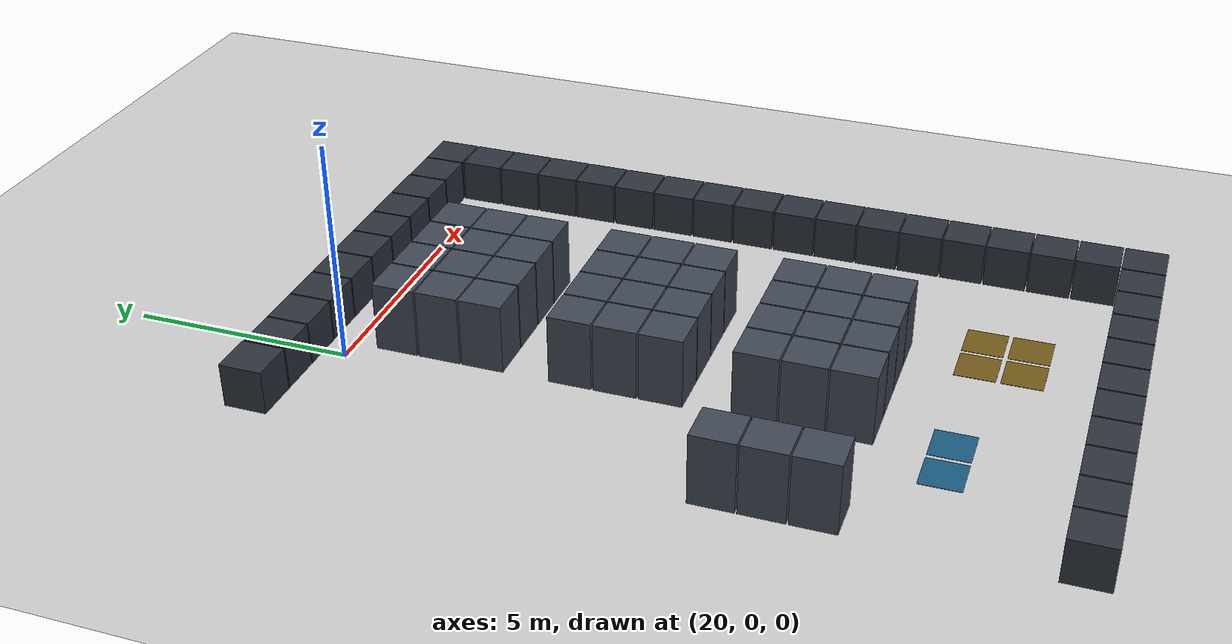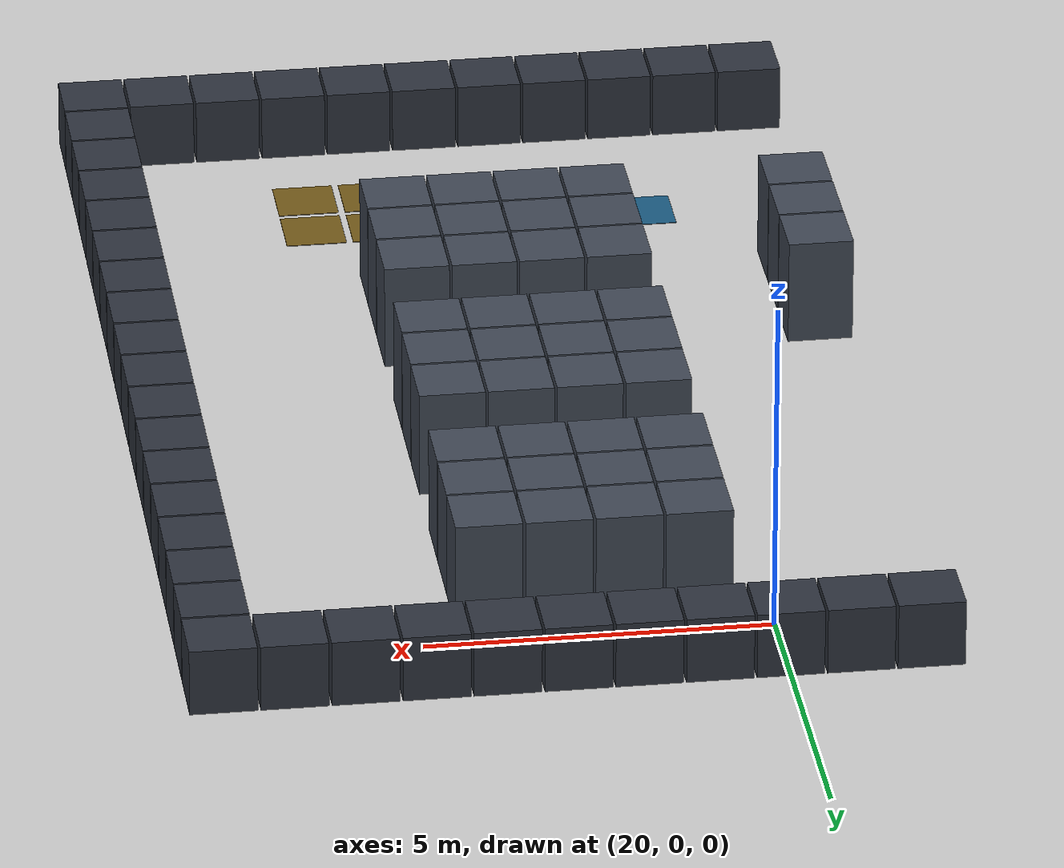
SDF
<sdf version="1.6">
 <world name="fleetx_warehouse">
  <include><uri>model://sun</uri></include>
  <include><uri>model://ground_plane</uri></include>
  <model name="shelf_21_1">
   <static>true</static>
   <pose>21.000 -1.000 0.800 0 0 0</pose>
   <link name="link">
    <collision name="collision"><geometry><box><size>0.960 0.960 1.600</size></box></geometry></collision>
    <visual name="visual">
     <geometry><box><size>0.960 0.960 1.600</size></box></geometry>
     <material><ambient>0.25 0.28 0.33 1</ambient><diffuse>0.25 0.28 0.33 1</diffuse></material>
    </visual>
   </link>
  </model>
  <model name="shelf_22_1">
   <static>true</static>
   <pose>22.000 -1.000 0.800 0 0 0</pose>
   <link name="link">
    <collision name="collision"><geometry><box><size>0.960 0.960 1.600</size></box></geometry></collision>
    <visual name="visual">
     <geometry><box><size>0.960 0.960 1.600</size></box></geometry>
     <material><ambient>0.25 0.28 0.33 1</ambient><diffuse>0.25 0.28 0.33 1</diffuse></material>
    </visual>
   </link>
  </model>
  <model name="shelf_23_1">
   <static>true</static>
   <pose>23.000 -1.000 0.800 0 0 0</pose>
   <link name="link">
    <collision name="collision"><geometry><box><size>0.960 0.960 1.600</size></box></geometry></collision>
    <visual name="visual">
     <geometry><box><size>0.960 0.960 1.600</size></box></geometry>
     <material><ambient>0.25 0.28 0.33 1</ambient><diffuse>0.25 0.28 0.33 1</diffuse></material>
    </visual>
   </link>
  </model>
  <model name="shelf_24_1">
   <static>true</static>
   <pose>24.000 -1.000 0.800 0 0 0</pose>
   <link name="link">
    <collision name="collision"><geometry><box><size>0.960 0.960 1.600</size></box></geometry></collision>
    <visual name="visual">
     <geometry><box><size>0.960 0.960 1.600</size></box></geometry>
     <material><ambient>0.25 0.28 0.33 1</ambient><diffuse>0.25 0.28 0.33 1</diffuse></material>
    </visual>
   </link>
  </model>
  <model name="shelf_21_2">
   <static>true</static>
   <pose>21.000 -2.000 0.800 0 0 0</pose>
   <link name="link">
    <collision name="collision"><geometry><box><size>0.960 0.960 1.600</size></box></geometry></collision>
    <visual name="visual">
     <geometry><box><size>0.960 0.960 1.600</size></box></geometry>
     <material><ambient>0.25 0.28 0.33 1</ambient><diffuse>0.25 0.28 0.33 1</diffuse></material>
    </visual>
   </link>
  </model>
  <model name="shelf_22_2">
   <static>true</static>
   <pose>22.000 -2.000 0.800 0 0 0</pose>
   <link name="link">
    <collision name="collision"><geometry><box><size>0.960 0.960 1.600</size></box></geometry></collision>
    <visual name="visual">
     <geometry><box><size>0.960 0.960 1.600</size></box></geometry>
     <material><ambient>0.25 0.28 0.33 1</ambient><diffuse>0.25 0.28 0.33 1</diffuse></material>
    </visual>
   </link>
  </model>
  <model name="shelf_23_2">
   <static>true</static>
   <pose>23.000 -2.000 0.800 0 0 0</pose>
   <link name="link">
    <collision name="collision"><geometry><box><size>0.960 0.960 1.600</size></box></geometry></collision>
    <visual name="visual">
     <geometry><box><size>0.960 0.960 1.600</size></box></geometry>
     <material><ambient>0.25 0.28 0.33 1</ambient><diffuse>0.25 0.28 0.33 1</diffuse></material>
    </visual>
   </link>
  </model>
  <model name="shelf_24_2">
   <static>true</static>
   <pose>24.000 -2.000 0.800 0 0 0</pose>
   <link name="link">
    <collision name="collision"><geometry><box><size>0.960 0.960 1.600</size></box></geometry></collision>
    <visual name="visual">
     <geometry><box><size>0.960 0.960 1.600</size></box></geometry>
     <material><ambient>0.25 0.28 0.33 1</ambient><diffuse>0.25 0.28 0.33 1</diffuse></material>
    </visual>
   </link>
  </model>
  <model name="shelf_21_3">
   <static>true</static>
   <pose>21.000 -3.000 0.800 0 0 0</pose>
   <link name="link">
    <collision name="collision"><geometry><box><size>0.960 0.960 1.600</size></box></geometry></collision>
    <visual name="visual">
     <geometry><box><size>0.960 0.960 1.600</size></box></geometry>
     <material><ambient>0.25 0.28 0.33 1</ambient><diffuse>0.25 0.28 0.33 1</diffuse></material>
    </visual>
   </link>
  </model>
  <model name="shelf_22_3">
   <static>true</static>
   <pose>22.000 -3.000 0.800 0 0 0</pose>
   <link name="link">
    <collision name="collision"><geometry><box><size>0.960 0.960 1.600</size></box></geometry></collision>
    <visual name="visual">
     <geometry><box><size>0.960 0.960 1.600</size></box></geometry>
     <material><ambient>0.25 0.28 0.33 1</ambient><diffuse>0.25 0.28 0.33 1</diffuse></material>
    </visual>
   </link>
  </model>
  <model name="shelf_23_3">
   <static>true</static>
   <pose>23.000 -3.000 0.800 0 0 0</pose>
   <link name="link">
    <collision name="collision"><geometry><box><size>0.960 0.960 1.600</size></box></geometry></collision>
    <visual name="visual">
     <geometry><box><size>0.960 0.960 1.600</size></box></geometry>
     <material><ambient>0.25 0.28 0.33 1</ambient><diffuse>0.25 0.28 0.33 1</diffuse></material>
    </visual>
   </link>
  </model>
  <model name="shelf_24_3">
   <static>true</static>
   <pose>24.000 -3.000 0.800 0 0 0</pose>
   <link name="link">
    <collision name="collision"><geometry><box><size>0.960 0.960 1.600</size></box></geometry></collision>
    <visual name="visual">
     <geometry><box><size>0.960 0.960 1.600</size></box></geometry>
     <material><ambient>0.25 0.28 0.33 1</ambient><diffuse>0.25 0.28 0.33 1</diffuse></material>
    </visual>
   </link>
  </model>
  <model name="shelf_21_5">
   <static>true</static>
   <pose>21.000 -5.000 0.800 0 0 0</pose>
   <link name="link">
    <collision name="collision"><geometry><box><size>0.960 0.960 1.600</size></box></geometry></collision>
    <visual name="visual">
     <geometry><box><size>0.960 0.960 1.600</size></box></geometry>
     <material><ambient>0.25 0.28 0.33 1</ambient><diffuse>0.25 0.28 0.33 1</diffuse></material>
    </visual>
   </link>
  </model>
  <model name="shelf_22_5">
   <static>true</static>
   <pose>22.000 -5.000 0.800 0 0 0</pose>
   <link name="link">
    <collision name="collision"><geometry><box><size>0.960 0.960 1.600</size></box></geometry></collision>
    <visual name="visual">
     <geometry><box><size>0.960 0.960 1.600</size></box></geometry>
     <material><ambient>0.25 0.28 0.33 1</ambient><diffuse>0.25 0.28 0.33 1</diffuse></material>
    </visual>
   </link>
  </model>
  <model name="shelf_23_5">
   <static>true</static>
   <pose>23.000 -5.000 0.800 0 0 0</pose>
   <link name="link">
    <collision name="collision"><geometry><box><size>0.960 0.960 1.600</size></box></geometry></collision>
    <visual name="visual">
     <geometry><box><size>0.960 0.960 1.600</size></box></geometry>
     <material><ambient>0.25 0.28 0.33 1</ambient><diffuse>0.25 0.28 0.33 1</diffuse></material>
    </visual>
   </link>
  </model>
  <model name="shelf_24_5">
   <static>true</static>
   <pose>24.000 -5.000 0.800 0 0 0</pose>
   <link name="link">
    <collision name="collision"><geometry><box><size>0.960 0.960 1.600</size></box></geometry></collision>
    <visual name="visual">
     <geometry><box><size>0.960 0.960 1.600</size></box></geometry>
     <material><ambient>0.25 0.28 0.33 1</ambient><diffuse>0.25 0.28 0.33 1</diffuse></material>
    </visual>
   </link>
  </model>
  <model name="shelf_21_6">
   <static>true</static>
   <pose>21.000 -6.000 0.800 0 0 0</pose>
   <link name="link">
    <collision name="collision"><geometry><box><size>0.960 0.960 1.600</size></box></geometry></collision>
    <visual name="visual">
     <geometry><box><size>0.960 0.960 1.600</size></box></geometry>
     <material><ambient>0.25 0.28 0.33 1</ambient><diffuse>0.25 0.28 0.33 1</diffuse></material>
    </visual>
   </link>
  </model>
  <model name="shelf_22_6">
   <static>true</static>
   <pose>22.000 -6.000 0.800 0 0 0</pose>
   <link name="link">
    <collision name="collision"><geometry><box><size>0.960 0.960 1.600</size></box></geometry></collision>
    <visual name="visual">
     <geometry><box><size>0.960 0.960 1.600</size></box></geometry>
     <material><ambient>0.25 0.28 0.33 1</ambient><diffuse>0.25 0.28 0.33 1</diffuse></material>
    </visual>
   </link>
  </model>
  <model name="shelf_23_6">
   <static>true</static>
   <pose>23.000 -6.000 0.800 0 0 0</pose>
   <link name="link">
    <collision name="collision"><geometry><box><size>0.960 0.960 1.600</size></box></geometry></collision>
    <visual name="visual">
     <geometry><box><size>0.960 0.960 1.600</size></box></geometry>
     <material><ambient>0.25 0.28 0.33 1</ambient><diffuse>0.25 0.28 0.33 1</diffuse></material>
    </visual>
   </link>
  </model>
  <model name="shelf_24_6">
   <static>true</static>
   <pose>24.000 -6.000 0.800 0 0 0</pose>
   <link name="link">
    <collision name="collision"><geometry><box><size>0.960 0.960 1.600</size></box></geometry></collision>
    <visual name="visual">
     <geometry><box><size>0.960 0.960 1.600</size></box></geometry>
     <material><ambient>0.25 0.28 0.33 1</ambient><diffuse>0.25 0.28 0.33 1</diffuse></material>
    </visual>
   </link>
  </model>
  <model name="shelf_21_7">
   <static>true</static>
   <pose>21.000 -7.000 0.800 0 0 0</pose>
   <link name="link">
    <collision name="collision"><geometry><box><size>0.960 0.960 1.600</size></box></geometry></collision>
    <visual name="visual">
     <geometry><box><size>0.960 0.960 1.600</size></box></geometry>
     <material><ambient>0.25 0.28 0.33 1</ambient><diffuse>0.25 0.28 0.33 1</diffuse></material>
    </visual>
   </link>
  </model>
  <model name="shelf_22_7">
   <static>true</static>
   <pose>22.000 -7.000 0.800 0 0 0</pose>
   <link name="link">
    <collision name="collision"><geometry><box><size>0.960 0.960 1.600</size></box></geometry></collision>
    <visual name="visual">
     <geometry><box><size>0.960 0.960 1.600</size></box></geometry>
     <material><ambient>0.25 0.28 0.33 1</ambient><diffuse>0.25 0.28 0.33 1</diffuse></material>
    </visual>
   </link>
  </model>
  <model name="shelf_23_7">
   <static>true</static>
   <pose>23.000 -7.000 0.800 0 0 0</pose>
   <link name="link">
    <collision name="collision"><geometry><box><size>0.960 0.960 1.600</size></box></geometry></collision>
    <visual name="visual">
     <geometry><box><size>0.960 0.960 1.600</size></box></geometry>
     <material><ambient>0.25 0.28 0.33 1</ambient><diffuse>0.25 0.28 0.33 1</diffuse></material>
    </visual>
   </link>
  </model>
  <model name="shelf_24_7">
   <static>true</static>
   <pose>24.000 -7.000 0.800 0 0 0</pose>
   <link name="link">
    <collision name="collision"><geometry><box><size>0.960 0.960 1.600</size></box></geometry></collision>
    <visual name="visual">
     <geometry><box><size>0.960 0.960 1.600</size></box></geometry>
     <material><ambient>0.25 0.28 0.33 1</ambient><diffuse>0.25 0.28 0.33 1</diffuse></material>
    </visual>
   </link>
  </model>
  <model name="shelf_18_9">
   <static>true</static>
   <pose>18.000 -9.000 0.800 0 0 0</pose>
   <link name="link">
    <collision name="collision"><geometry><box><size>0.960 0.960 1.600</size></box></geometry></collision>
    <visual name="visual">
     <geometry><box><size>0.960 0.960 1.600</size></box></geometry>
     <material><ambient>0.25 0.28 0.33 1</ambient><diffuse>0.25 0.28 0.33 1</diffuse></material>
    </visual>
   </link>
  </model>
  <model name="shelf_21_9">
   <static>true</static>
   <pose>21.000 -9.000 0.800 0 0 0</pose>
   <link name="link">
    <collision name="collision"><geometry><box><size>0.960 0.960 1.600</size></box></geometry></collision>
    <visual name="visual">
     <geometry><box><size>0.960 0.960 1.600</size></box></geometry>
     <material><ambient>0.25 0.28 0.33 1</ambient><diffuse>0.25 0.28 0.33 1</diffuse></material>
    </visual>
   </link>
  </model>
  <model name="shelf_22_9">
   <static>true</static>
   <pose>22.000 -9.000 0.800 0 0 0</pose>
   <link name="link">
    <collision name="collision"><geometry><box><size>0.960 0.960 1.600</size></box></geometry></collision>
    <visual name="visual">
     <geometry><box><size>0.960 0.960 1.600</size></box></geometry>
     <material><ambient>0.25 0.28 0.33 1</ambient><diffuse>0.25 0.28 0.33 1</diffuse></material>
    </visual>
   </link>
  </model>
  <model name="shelf_23_9">
   <static>true</static>
   <pose>23.000 -9.000 0.800 0 0 0</pose>
   <link name="link">
    <collision name="collision"><geometry><box><size>0.960 0.960 1.600</size></box></geometry></collision>
    <visual name="visual">
     <geometry><box><size>0.960 0.960 1.600</size></box></geometry>
     <material><ambient>0.25 0.28 0.33 1</ambient><diffuse>0.25 0.28 0.33 1</diffuse></material>
    </visual>
   </link>
  </model>
  <model name="shelf_24_9">
   <static>true</static>
   <pose>24.000 -9.000 0.800 0 0 0</pose>
   <link name="link">
    <collision name="collision"><geometry><box><size>0.960 0.960 1.600</size></box></geometry></collision>
    <visual name="visual">
     <geometry><box><size>0.960 0.960 1.600</size></box></geometry>
     <material><ambient>0.25 0.28 0.33 1</ambient><diffuse>0.25 0.28 0.33 1</diffuse></material>
    </visual>
   </link>
  </model>
  <model name="shelf_18_10">
   <static>true</static>
   <pose>18.000 -10.000 0.800 0 0 0</pose>
   <link name="link">
    <collision name="collision"><geometry><box><size>0.960 0.960 1.600</size></box></geometry></collision>
    <visual name="visual">
     <geometry><box><size>0.960 0.960 1.600</size></box></geometry>
     <material><ambient>0.25 0.28 0.33 1</ambient><diffuse>0.25 0.28 0.33 1</diffuse></material>
    </visual>
   </link>
  </model>
  <model name="shelf_21_10">
   <static>true</static>
   <pose>21.000 -10.000 0.800 0 0 0</pose>
   <link name="link">
    <collision name="collision"><geometry><box><size>0.960 0.960 1.600</size></box></geometry></collision>
    <visual name="visual">
     <geometry><box><size>0.960 0.960 1.600</size></box></geometry>
     <material><ambient>0.25 0.28 0.33 1</ambient><diffuse>0.25 0.28 0.33 1</diffuse></material>
    </visual>
   </link>
  </model>
  <model name="shelf_22_10">
   <static>true</static>
   <pose>22.000 -10.000 0.800 0 0 0</pose>
   <link name="link">
    <collision name="collision"><geometry><box><size>0.960 0.960 1.600</size></box></geometry></collision>
    <visual name="visual">
     <geometry><box><size>0.960 0.960 1.600</size></box></geometry>
     <material><ambient>0.25 0.28 0.33 1</ambient><diffuse>0.25 0.28 0.33 1</diffuse></material>
    </visual>
   </link>
  </model>
  <model name="shelf_23_10">
   <static>true</static>
   <pose>23.000 -10.000 0.800 0 0 0</pose>
   <link name="link">
    <collision name="collision"><geometry><box><size>0.960 0.960 1.600</size></box></geometry></collision>
    <visual name="visual">
     <geometry><box><size>0.960 0.960 1.600</size></box></geometry>
     <material><ambient>0.25 0.28 0.33 1</ambient><diffuse>0.25 0.28 0.33 1</diffuse></material>
    </visual>
   </link>
  </model>
  <model name="shelf_24_10">
   <static>true</static>
   <pose>24.000 -10.000 0.800 0 0 0</pose>
   <link name="link">
    <collision name="collision"><geometry><box><size>0.960 0.960 1.600</size></box></geometry></collision>
    <visual name="visual">
     <geometry><box><size>0.960 0.960 1.600</size></box></geometry>
     <material><ambient>0.25 0.28 0.33 1</ambient><diffuse>0.25 0.28 0.33 1</diffuse></material>
    </visual>
   </link>
  </model>
  <model name="shelf_18_11">
   <static>true</static>
   <pose>18.000 -11.000 0.800 0 0 0</pose>
   <link name="link">
    <collision name="collision"><geometry><box><size>0.960 0.960 1.600</size></box></geometry></collision>
    <visual name="visual">
     <geometry><box><size>0.960 0.960 1.600</size></box></geometry>
     <material><ambient>0.25 0.28 0.33 1</ambient><diffuse>0.25 0.28 0.33 1</diffuse></material>
    </visual>
   </link>
  </model>
  <model name="shelf_21_11">
   <static>true</static>
   <pose>21.000 -11.000 0.800 0 0 0</pose>
   <link name="link">
    <collision name="collision"><geometry><box><size>0.960 0.960 1.600</size></box></geometry></collision>
    <visual name="visual">
     <geometry><box><size>0.960 0.960 1.600</size></box></geometry>
     <material><ambient>0.25 0.28 0.33 1</ambient><diffuse>0.25 0.28 0.33 1</diffuse></material>
    </visual>
   </link>
  </model>
  <model name="shelf_22_11">
   <static>true</static>
   <pose>22.000 -11.000 0.800 0 0 0</pose>
   <link name="link">
    <collision name="collision"><geometry><box><size>0.960 0.960 1.600</size></box></geometry></collision>
    <visual name="visual">
     <geometry><box><size>0.960 0.960 1.600</size></box></geometry>
     <material><ambient>0.25 0.28 0.33 1</ambient><diffuse>0.25 0.28 0.33 1</diffuse></material>
    </visual>
   </link>
  </model>
  <model name="shelf_23_11">
   <static>true</static>
   <pose>23.000 -11.000 0.800 0 0 0</pose>
   <link name="link">
    <collision name="collision"><geometry><box><size>0.960 0.960 1.600</size></box></geometry></collision>
    <visual name="visual">
     <geometry><box><size>0.960 0.960 1.600</size></box></geometry>
     <material><ambient>0.25 0.28 0.33 1</ambient><diffuse>0.25 0.28 0.33 1</diffuse></material>
    </visual>
   </link>
  </model>
  <model name="shelf_24_11">
   <static>true</static>
   <pose>24.000 -11.000 0.800 0 0 0</pose>
   <link name="link">
    <collision name="collision"><geometry><box><size>0.960 0.960 1.600</size></box></geometry></collision>
    <visual name="visual">
     <geometry><box><size>0.960 0.960 1.600</size></box></geometry>
     <material><ambient>0.25 0.28 0.33 1</ambient><diffuse>0.25 0.28 0.33 1</diffuse></material>
    </visual>
   </link>
  </model>
  <model name="drop_20_13">
   <static>true</static>
   <pose>20.000 -13.000 0.005 0 0 0</pose>
   <link name="link">
    <visual name="visual">
     <geometry><box><size>0.900 0.900 0.01</size></box></geometry>
     <material><ambient>0.10 0.35 0.50 1</ambient><diffuse>0.10 0.35 0.50 1</diffuse></material>
    </visual>
   </link>
  </model>
  <model name="drop_21_13">
   <static>true</static>
   <pose>21.000 -13.000 0.005 0 0 0</pose>
   <link name="link">
    <visual name="visual">
     <geometry><box><size>0.900 0.900 0.01</size></box></geometry>
     <material><ambient>0.10 0.35 0.50 1</ambient><diffuse>0.10 0.35 0.50 1</diffuse></material>
    </visual>
   </link>
  </model>
  <model name="charger_24_13">
   <static>true</static>
   <pose>24.000 -13.000 0.005 0 0 0</pose>
   <link name="link">
    <visual name="visual">
     <geometry><box><size>0.900 0.900 0.01</size></box></geometry>
     <material><ambient>0.45 0.35 0.10 1</ambient><diffuse>0.45 0.35 0.10 1</diffuse></material>
    </visual>
   </link>
  </model>
  <model name="charger_25_13">
   <static>true</static>
   <pose>25.000 -13.000 0.005 0 0 0</pose>
   <link name="link">
    <visual name="visual">
     <geometry><box><size>0.900 0.900 0.01</size></box></geometry>
     <material><ambient>0.45 0.35 0.10 1</ambient><diffuse>0.45 0.35 0.10 1</diffuse></material>
    </visual>
   </link>
  </model>
  <model name="charger_24_14">
   <static>true</static>
   <pose>24.000 -14.000 0.005 0 0 0</pose>
   <link name="link">
    <visual name="visual">
     <geometry><box><size>0.900 0.900 0.01</size></box></geometry>
     <material><ambient>0.45 0.35 0.10 1</ambient><diffuse>0.45 0.35 0.10 1</diffuse></material>
    </visual>
   </link>
  </model>
  <model name="charger_25_14">
   <static>true</static>
   <pose>25.000 -14.000 0.005 0 0 0</pose>
   <link name="link">
    <visual name="visual">
     <geometry><box><size>0.900 0.900 0.01</size></box></geometry>
     <material><ambient>0.45 0.35 0.10 1</ambient><diffuse>0.45 0.35 0.10 1</diffuse></material>
    </visual>
   </link>
  </model>
  <model name="wall_n_18">
   <static>true</static>
   <pose>18.000 1.000 0.500 0 0 0</pose>
   <link name="link">
    <collision name="collision"><geometry><box><size>0.960 0.960 1.000</size></box></geometry></collision>
    <visual name="visual">
     <geometry><box><size>0.960 0.960 1.000</size></box></geometry>
     <material><ambient>0.18 0.20 0.24 1</ambient><diffuse>0.18 0.20 0.24 1</diffuse></material>
    </visual>
   </link>
  </model>
  <model name="wall_s_18">
   <static>true</static>
   <pose>18.000 -16.000 0.500 0 0 0</pose>
   <link name="link">
    <collision name="collision"><geometry><box><size>0.960 0.960 1.000</size></box></geometry></collision>
    <visual name="visual">
     <geometry><box><size>0.960 0.960 1.000</size></box></geometry>
     <material><ambient>0.18 0.20 0.24 1</ambient><diffuse>0.18 0.20 0.24 1</diffuse></material>
    </visual>
   </link>
  </model>
  <model name="wall_n_19">
   <static>true</static>
   <pose>19.000 1.000 0.500 0 0 0</pose>
   <link name="link">
    <collision name="collision"><geometry><box><size>0.960 0.960 1.000</size></box></geometry></collision>
    <visual name="visual">
     <geometry><box><size>0.960 0.960 1.000</size></box></geometry>
     <material><ambient>0.18 0.20 0.24 1</ambient><diffuse>0.18 0.20 0.24 1</diffuse></material>
    </visual>
   </link>
  </model>
  <model name="wall_s_19">
   <static>true</static>
   <pose>19.000 -16.000 0.500 0 0 0</pose>
   <link name="link">
    <collision name="collision"><geometry><box><size>0.960 0.960 1.000</size></box></geometry></collision>
    <visual name="visual">
     <geometry><box><size>0.960 0.960 1.000</size></box></geometry>
     <material><ambient>0.18 0.20 0.24 1</ambient><diffuse>0.18 0.20 0.24 1</diffuse></material>
    </visual>
   </link>
  </model>
  <model name="wall_n_20">
   <static>true</static>
   <pose>20.000 1.000 0.500 0 0 0</pose>
   <link name="link">
    <collision name="collision"><geometry><box><size>0.960 0.960 1.000</size></box></geometry></collision>
    <visual name="visual">
     <geometry><box><size>0.960 0.960 1.000</size></box></geometry>
     <material><ambient>0.18 0.20 0.24 1</ambient><diffuse>0.18 0.20 0.24 1</diffuse></material>
    </visual>
   </link>
  </model>
  <model name="wall_s_20">
   <static>true</static>
   <pose>20.000 -16.000 0.500 0 0 0</pose>
   <link name="link">
    <collision name="collision"><geometry><box><size>0.960 0.960 1.000</size></box></geometry></collision>
    <visual name="visual">
     <geometry><box><size>0.960 0.960 1.000</size></box></geometry>
     <material><ambient>0.18 0.20 0.24 1</ambient><diffuse>0.18 0.20 0.24 1</diffuse></material>
    </visual>
   </link>
  </model>
  <model name="wall_n_21">
   <static>true</static>
   <pose>21.000 1.000 0.500 0 0 0</pose>
   <link name="link">
    <collision name="collision"><geometry><box><size>0.960 0.960 1.000</size></box></geometry></collision>
    <visual name="visual">
     <geometry><box><size>0.960 0.960 1.000</size></box></geometry>
     <material><ambient>0.18 0.20 0.24 1</ambient><diffuse>0.18 0.20 0.24 1</diffuse></material>
    </visual>
   </link>
  </model>
  <model name="wall_s_21">
   <static>true</static>
   <pose>21.000 -16.000 0.500 0 0 0</pose>
   <link name="link">
    <collision name="collision"><geometry><box><size>0.960 0.960 1.000</size></box></geometry></collision>
    <visual name="visual">
     <geometry><box><size>0.960 0.960 1.000</size></box></geometry>
     <material><ambient>0.18 0.20 0.24 1</ambient><diffuse>0.18 0.20 0.24 1</diffuse></material>
    </visual>
   </link>
  </model>
  <model name="wall_n_22">
   <static>true</static>
   <pose>22.000 1.000 0.500 0 0 0</pose>
   <link name="link">
    <collision name="collision"><geometry><box><size>0.960 0.960 1.000</size></box></geometry></collision>
    <visual name="visual">
     <geometry><box><size>0.960 0.960 1.000</size></box></geometry>
     <material><ambient>0.18 0.20 0.24 1</ambient><diffuse>0.18 0.20 0.24 1</diffuse></material>
    </visual>
   </link>
  </model>
  <model name="wall_s_22">
   <static>true</static>
   <pose>22.000 -16.000 0.500 0 0 0</pose>
   <link name="link">
    <collision name="collision"><geometry><box><size>0.960 0.960 1.000</size></box></geometry></collision>
    <visual name="visual">
     <geometry><box><size>0.960 0.960 1.000</size></box></geometry>
     <material><ambient>0.18 0.20 0.24 1</ambient><diffuse>0.18 0.20 0.24 1</diffuse></material>
    </visual>
   </link>
  </model>
  <model name="wall_n_23">
   <static>true</static>
   <pose>23.000 1.000 0.500 0 0 0</pose>
   <link name="link">
    <collision name="collision"><geometry><box><size>0.960 0.960 1.000</size></box></geometry></collision>
    <visual name="visual">
     <geometry><box><size>0.960 0.960 1.000</size></box></geometry>
     <material><ambient>0.18 0.20 0.24 1</ambient><diffuse>0.18 0.20 0.24 1</diffuse></material>
    </visual>
   </link>
  </model>
  <model name="wall_s_23">
   <static>true</static>
   <pose>23.000 -16.000 0.500 0 0 0</pose>
   <link name="link">
    <collision name="collision"><geometry><box><size>0.960 0.960 1.000</size></box></geometry></collision>
    <visual name="visual">
     <geometry><box><size>0.960 0.960 1.000</size></box></geometry>
     <material><ambient>0.18 0.20 0.24 1</ambient><diffuse>0.18 0.20 0.24 1</diffuse></material>
    </visual>
   </link>
  </model>
  <model name="wall_n_24">
   <static>true</static>
   <pose>24.000 1.000 0.500 0 0 0</pose>
   <link name="link">
    <collision name="collision"><geometry><box><size>0.960 0.960 1.000</size></box></geometry></collision>
    <visual name="visual">
     <geometry><box><size>0.960 0.960 1.000</size></box></geometry>
     <material><ambient>0.18 0.20 0.24 1</ambient><diffuse>0.18 0.20 0.24 1</diffuse></material>
    </visual>
   </link>
  </model>
  <model name="wall_s_24">
   <static>true</static>
   <pose>24.000 -16.000 0.500 0 0 0</pose>
   <link name="link">
    <collision name="collision"><geometry><box><size>0.960 0.960 1.000</size></box></geometry></collision>
    <visual name="visual">
     <geometry><box><size>0.960 0.960 1.000</size></box></geometry>
     <material><ambient>0.18 0.20 0.24 1</ambient><diffuse>0.18 0.20 0.24 1</diffuse></material>
    </visual>
   </link>
  </model>
  <model name="wall_n_25">
   <static>true</static>
   <pose>25.000 1.000 0.500 0 0 0</pose>
   <link name="link">
    <collision name="collision"><geometry><box><size>0.960 0.960 1.000</size></box></geometry></collision>
    <visual name="visual">
     <geometry><box><size>0.960 0.960 1.000</size></box></geometry>
     <material><ambient>0.18 0.20 0.24 1</ambient><diffuse>0.18 0.20 0.24 1</diffuse></material>
    </visual>
   </link>
  </model>
  <model name="wall_s_25">
   <static>true</static>
   <pose>25.000 -16.000 0.500 0 0 0</pose>
   <link name="link">
    <collision name="collision"><geometry><box><size>0.960 0.960 1.000</size></box></geometry></collision>
    <visual name="visual">
     <geometry><box><size>0.960 0.960 1.000</size></box></geometry>
     <material><ambient>0.18 0.20 0.24 1</ambient><diffuse>0.18 0.20 0.24 1</diffuse></material>
    </visual>
   </link>
  </model>
  <model name="wall_n_26">
   <static>true</static>
   <pose>26.000 1.000 0.500 0 0 0</pose>
   <link name="link">
    <collision name="collision"><geometry><box><size>0.960 0.960 1.000</size></box></geometry></collision>
    <visual name="visual">
     <geometry><box><size>0.960 0.960 1.000</size></box></geometry>
     <material><ambient>0.18 0.20 0.24 1</ambient><diffuse>0.18 0.20 0.24 1</diffuse></material>
    </visual>
   </link>
  </model>
  <model name="wall_s_26">
   <static>true</static>
   <pose>26.000 -16.000 0.500 0 0 0</pose>
   <link name="link">
    <collision name="collision"><geometry><box><size>0.960 0.960 1.000</size></box></geometry></collision>
    <visual name="visual">
     <geometry><box><size>0.960 0.960 1.000</size></box></geometry>
     <material><ambient>0.18 0.20 0.24 1</ambient><diffuse>0.18 0.20 0.24 1</diffuse></material>
    </visual>
   </link>
  </model>
  <model name="wall_n_27">
   <static>true</static>
   <pose>27.000 1.000 0.500 0 0 0</pose>
   <link name="link">
    <collision name="collision"><geometry><box><size>0.960 0.960 1.000</size></box></geometry></collision>
    <visual name="visual">
     <geometry><box><size>0.960 0.960 1.000</size></box></geometry>
     <material><ambient>0.18 0.20 0.24 1</ambient><diffuse>0.18 0.20 0.24 1</diffuse></material>
    </visual>
   </link>
  </model>
  <model name="wall_s_27">
   <static>true</static>
   <pose>27.000 -16.000 0.500 0 0 0</pose>
   <link name="link">
    <collision name="collision"><geometry><box><size>0.960 0.960 1.000</size></box></geometry></collision>
    <visual name="visual">
     <geometry><box><size>0.960 0.960 1.000</size></box></geometry>
     <material><ambient>0.18 0.20 0.24 1</ambient><diffuse>0.18 0.20 0.24 1</diffuse></material>
    </visual>
   </link>
  </model>
  <model name="wall_n_28">
   <static>true</static>
   <pose>28.000 1.000 0.500 0 0 0</pose>
   <link name="link">
    <collision name="collision"><geometry><box><size>0.960 0.960 1.000</size></box></geometry></collision>
    <visual name="visual">
     <geometry><box><size>0.960 0.960 1.000</size></box></geometry>
     <material><ambient>0.18 0.20 0.24 1</ambient><diffuse>0.18 0.20 0.24 1</diffuse></material>
    </visual>
   </link>
  </model>
  <model name="wall_s_28">
   <static>true</static>
   <pose>28.000 -16.000 0.500 0 0 0</pose>
   <link name="link">
    <collision name="collision"><geometry><box><size>0.960 0.960 1.000</size></box></geometry></collision>
    <visual name="visual">
     <geometry><box><size>0.960 0.960 1.000</size></box></geometry>
     <material><ambient>0.18 0.20 0.24 1</ambient><diffuse>0.18 0.20 0.24 1</diffuse></material>
    </visual>
   </link>
  </model>
  <model name="wall_e_0">
   <static>true</static>
   <pose>28.000 0.000 0.500 0 0 0</pose>
   <link name="link">
    <collision name="collision"><geometry><box><size>0.960 0.960 1.000</size></box></geometry></collision>
    <visual name="visual">
     <geometry><box><size>0.960 0.960 1.000</size></box></geometry>
     <material><ambient>0.18 0.20 0.24 1</ambient><diffuse>0.18 0.20 0.24 1</diffuse></material>
    </visual>
   </link>
  </model>
  <model name="wall_e_1">
   <static>true</static>
   <pose>28.000 -1.000 0.500 0 0 0</pose>
   <link name="link">
    <collision name="collision"><geometry><box><size>0.960 0.960 1.000</size></box></geometry></collision>
    <visual name="visual">
     <geometry><box><size>0.960 0.960 1.000</size></box></geometry>
     <material><ambient>0.18 0.20 0.24 1</ambient><diffuse>0.18 0.20 0.24 1</diffuse></material>
    </visual>
   </link>
  </model>
  <model name="wall_e_2">
   <static>true</static>
   <pose>28.000 -2.000 0.500 0 0 0</pose>
   <link name="link">
    <collision name="collision"><geometry><box><size>0.960 0.960 1.000</size></box></geometry></collision>
    <visual name="visual">
     <geometry><box><size>0.960 0.960 1.000</size></box></geometry>
     <material><ambient>0.18 0.20 0.24 1</ambient><diffuse>0.18 0.20 0.24 1</diffuse></material>
    </visual>
   </link>
  </model>
  <model name="wall_e_3">
   <static>true</static>
   <pose>28.000 -3.000 0.500 0 0 0</pose>
   <link name="link">
    <collision name="collision"><geometry><box><size>0.960 0.960 1.000</size></box></geometry></collision>
    <visual name="visual">
     <geometry><box><size>0.960 0.960 1.000</size></box></geometry>
     <material><ambient>0.18 0.20 0.24 1</ambient><diffuse>0.18 0.20 0.24 1</diffuse></material>
    </visual>
   </link>
  </model>
  <model name="wall_e_4">
   <static>true</static>
   <pose>28.000 -4.000 0.500 0 0 0</pose>
   <link name="link">
    <collision name="collision"><geometry><box><size>0.960 0.960 1.000</size></box></geometry></collision>
    <visual name="visual">
     <geometry><box><size>0.960 0.960 1.000</size></box></geometry>
     <material><ambient>0.18 0.20 0.24 1</ambient><diffuse>0.18 0.20 0.24 1</diffuse></material>
    </visual>
   </link>
  </model>
  <model name="wall_e_5">
   <static>true</static>
   <pose>28.000 -5.000 0.500 0 0 0</pose>
   <link name="link">
    <collision name="collision"><geometry><box><size>0.960 0.960 1.000</size></box></geometry></collision>
    <visual name="visual">
     <geometry><box><size>0.960 0.960 1.000</size></box></geometry>
     <material><ambient>0.18 0.20 0.24 1</ambient><diffuse>0.18 0.20 0.24 1</diffuse></material>
    </visual>
   </link>
  </model>
  <model name="wall_e_6">
   <static>true</static>
   <pose>28.000 -6.000 0.500 0 0 0</pose>
   <link name="link">
    <collision name="collision"><geometry><box><size>0.960 0.960 1.000</size></box></geometry></collision>
    <visual name="visual">
     <geometry><box><size>0.960 0.960 1.000</size></box></geometry>
     <material><ambient>0.18 0.20 0.24 1</ambient><diffuse>0.18 0.20 0.24 1</diffuse></material>
    </visual>
   </link>
  </model>
  <model name="wall_e_7">
   <static>true</static>
   <pose>28.000 -7.000 0.500 0 0 0</pose>
   <link name="link">
    <collision name="collision"><geometry><box><size>0.960 0.960 1.000</size></box></geometry></collision>
    <visual name="visual">
     <geometry><box><size>0.960 0.960 1.000</size></box></geometry>
     <material><ambient>0.18 0.20 0.24 1</ambient><diffuse>0.18 0.20 0.24 1</diffuse></material>
    </visual>
   </link>
  </model>
  <model name="wall_e_8">
   <static>true</static>
   <pose>28.000 -8.000 0.500 0 0 0</pose>
   <link name="link">
    <collision name="collision"><geometry><box><size>0.960 0.960 1.000</size></box></geometry></collision>
    <visual name="visual">
     <geometry><box><size>0.960 0.960 1.000</size></box></geometry>
     <material><ambient>0.18 0.20 0.24 1</ambient><diffuse>0.18 0.20 0.24 1</diffuse></material>
    </visual>
   </link>
  </model>
  <model name="wall_e_9">
   <static>true</static>
   <pose>28.000 -9.000 0.500 0 0 0</pose>
   <link name="link">
    <collision name="collision"><geometry><box><size>0.960 0.960 1.000</size></box></geometry></collision>
    <visual name="visual">
     <geometry><box><size>0.960 0.960 1.000</size></box></geometry>
     <material><ambient>0.18 0.20 0.24 1</ambient><diffuse>0.18 0.20 0.24 1</diffuse></material>
    </visual>
   </link>
  </model>
  <model name="wall_e_10">
   <static>true</static>
   <pose>28.000 -10.000 0.500 0 0 0</pose>
   <link name="link">
    <collision name="collision"><geometry><box><size>0.960 0.960 1.000</size></box></geometry></collision>
    <visual name="visual">
     <geometry><box><size>0.960 0.960 1.000</size></box></geometry>
     <material><ambient>0.18 0.20 0.24 1</ambient><diffuse>0.18 0.20 0.24 1</diffuse></material>
    </visual>
   </link>
  </model>
  <model name="wall_e_11">
   <static>true</static>
   <pose>28.000 -11.000 0.500 0 0 0</pose>
   <link name="link">
    <collision name="collision"><geometry><box><size>0.960 0.960 1.000</size></box></geometry></collision>
    <visual name="visual">
     <geometry><box><size>0.960 0.960 1.000</size></box></geometry>
     <material><ambient>0.18 0.20 0.24 1</ambient><diffuse>0.18 0.20 0.24 1</diffuse></material>
    </visual>
   </link>
  </model>
  <model name="wall_e_12">
   <static>true</static>
   <pose>28.000 -12.000 0.500 0 0 0</pose>
   <link name="link">
    <collision name="collision"><geometry><box><size>0.960 0.960 1.000</size></box></geometry></collision>
    <visual name="visual">
     <geometry><box><size>0.960 0.960 1.000</size></box></geometry>
     <material><ambient>0.18 0.20 0.24 1</ambient><diffuse>0.18 0.20 0.24 1</diffuse></material>
    </visual>
   </link>
  </model>
  <model name="wall_e_13">
   <static>true</static>
   <pose>28.000 -13.000 0.500 0 0 0</pose>
   <link name="link">
    <collision name="collision"><geometry><box><size>0.960 0.960 1.000</size></box></geometry></collision>
    <visual name="visual">
     <geometry><box><size>0.960 0.960 1.000</size></box></geometry>
     <material><ambient>0.18 0.20 0.24 1</ambient><diffuse>0.18 0.20 0.24 1</diffuse></material>
    </visual>
   </link>
  </model>
  <model name="wall_e_14">
   <static>true</static>
   <pose>28.000 -14.000 0.500 0 0 0</pose>
   <link name="link">
    <collision name="collision"><geometry><box><size>0.960 0.960 1.000</size></box></geometry></collision>
    <visual name="visual">
     <geometry><box><size>0.960 0.960 1.000</size></box></geometry>
     <material><ambient>0.18 0.20 0.24 1</ambient><diffuse>0.18 0.20 0.24 1</diffuse></material>
    </visual>
   </link>
  </model>
  <model name="wall_e_15">
   <static>true</static>
   <pose>28.000 -15.000 0.500 0 0 0</pose>
   <link name="link">
    <collision name="collision"><geometry><box><size>0.960 0.960 1.000</size></box></geometry></collision>
    <visual name="visual">
     <geometry><box><size>0.960 0.960 1.000</size></box></geometry>
     <material><ambient>0.18 0.20 0.24 1</ambient><diffuse>0.18 0.20 0.24 1</diffuse></material>
    </visual>
   </link>
  </model>
 </world>
</sdf>
